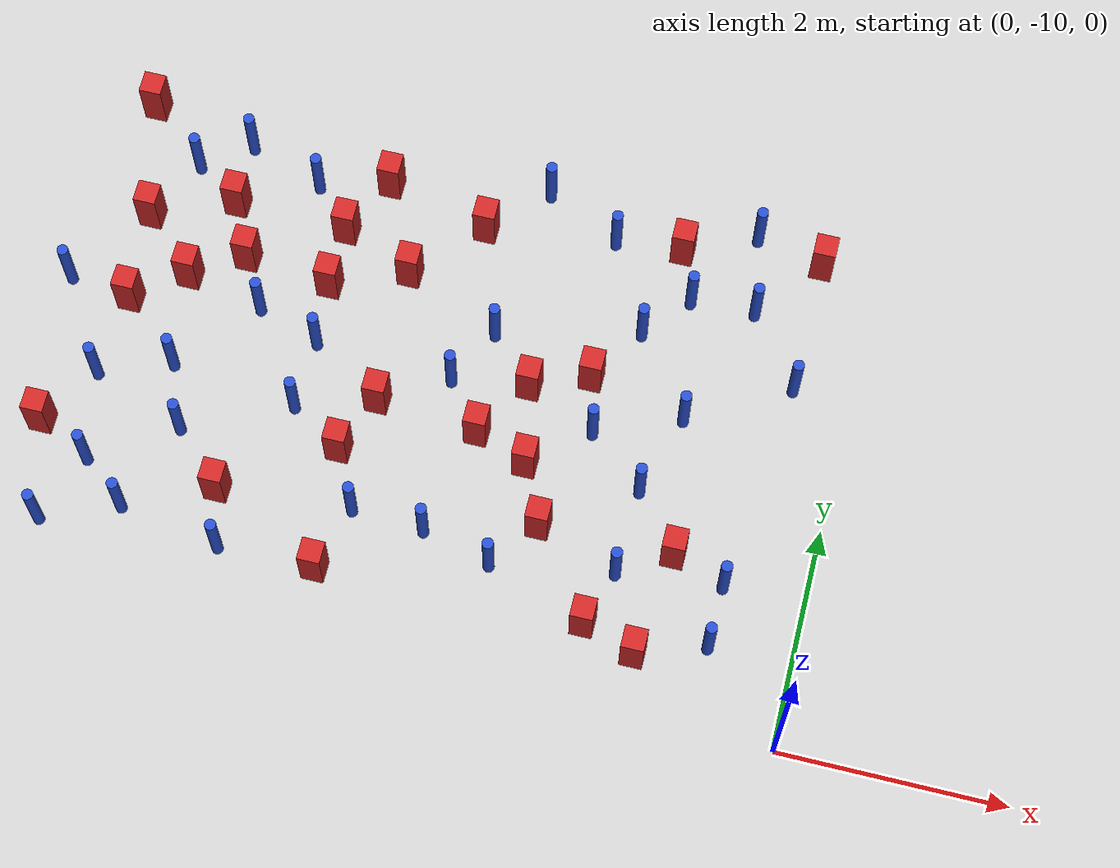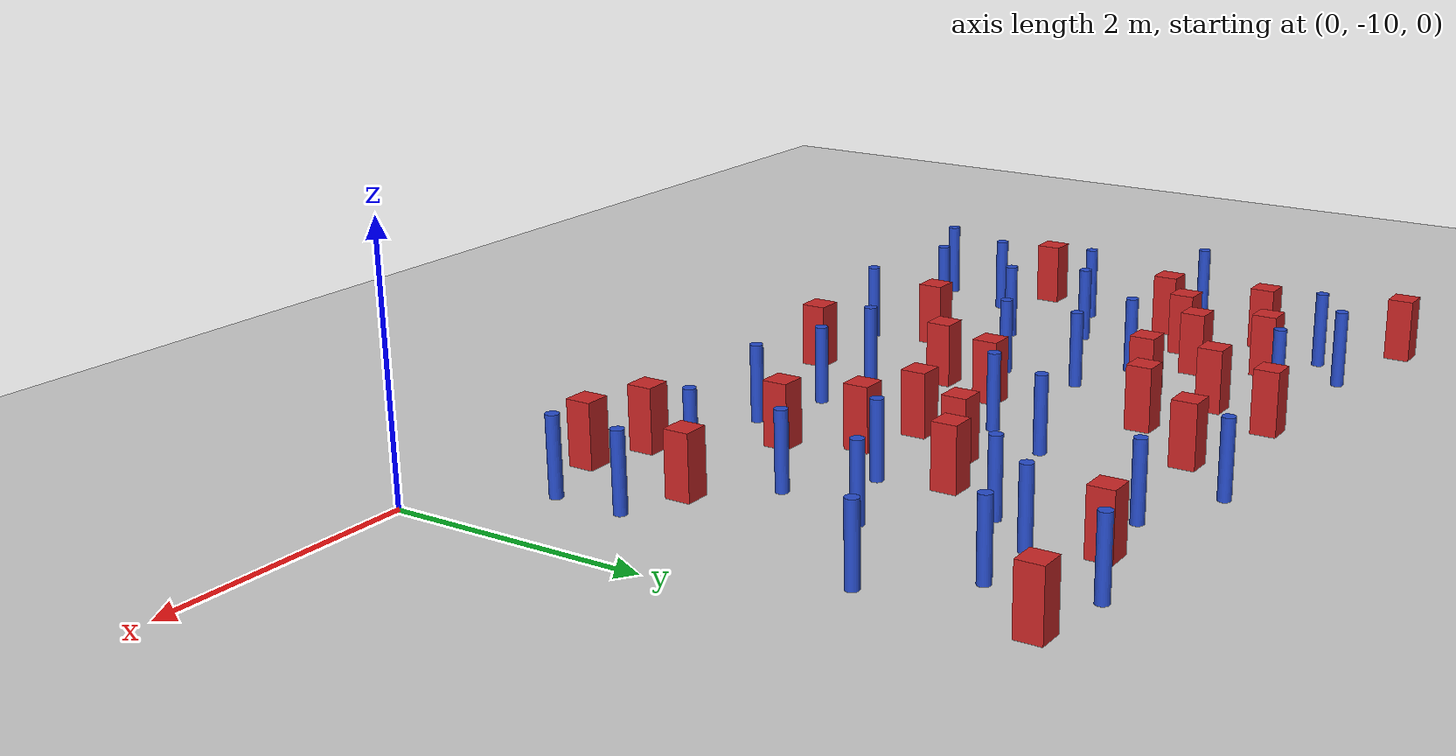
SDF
<sdf version="1.6">
 <world name="default">
  <model name="ground_plane">
   <static>1</static>
   <link name="link">
    <collision name="collision">
     <geometry><plane><normal>0 0 1</normal><size>100 100</size></plane></geometry>
     <surface><friction><ode><mu>100</mu><mu2>50</mu2></ode></friction></surface>
    </collision>
    <visual name="visual">
     <cast_shadows>0</cast_shadows>
     <geometry><plane><normal>0 0 1</normal><size>100 100</size></plane></geometry>
     <material>
      <ambient>1.0 1.0 1.0 1.0</ambient>
      <diffuse>0.8 0.8 0.8 1.0</diffuse>
      <specular>0.01 0.01 0.01 1.000000</specular>
     </material>
    </visual>
   </link>
  </model>
  <model name="square_post_obstacle1">
   <static>true</static>
   <pose>-6.75083043301 -5.38213380311 1.91545236811e-07 -7.35059704564e-06 1.12565212e-07 2.39332434364e-05</pose>
   <link name="link">
    <pose>0 0 0.25 0 -0 0</pose>
    <inertial>
     <mass>100</mass>
     <inertia>
      <ixx>0.166667</ixx>
      <ixy>0</ixy>
      <ixz>0</ixz>
      <iyy>0.166667</iyy>
      <iyz>0</iyz>
      <izz>0.166667</izz>
     </inertia>
    </inertial>
    <collision name="collision"><geometry><box><size>.2 .2 .5</size></box></geometry></collision>
    <visual name="visual">
     <geometry><box><size>.2 .2 .5</size></box></geometry>
     <material>
      <script><name>Gazebo/Red</name><uri>file://media/materials/scripts/gazebo.material</uri></script>
     </material>
    </visual>
   </link>
  </model>
  <model name="pole_obstacle3">
   <static>true</static>
   <pose>-3.02032872302 -5.40585776395 7.38925637345e-09 -8.47170692798e-08 1.24976765033e-08 -1.74513093019e-07</pose>
   <link name="link">
    <pose>0 0 0.3 0 -0 0</pose>
    <inertial>
     <mass>1</mass>
     <inertia><ixx>0.145833</ixx><ixy>0</ixy><ixz>0</ixz><iyy>0.145833</iyy><iyz>0</iyz><izz>0.125</izz></inertia>
    </inertial>
    <collision name="collision">
     <geometry><cylinder><radius>0.05</radius><length>.6</length></cylinder></geometry>
    </collision>
    <visual name="visual">
     <geometry><cylinder><radius>0.05</radius><length>.6</length></cylinder></geometry>
     <material>
      <script><name>Gazebo/Blue</name><uri>file://media/materials/scripts/gazebo.material</uri></script>
     </material>
    </visual>
   </link>
  </model>
  <model name="square_post_obstacle7">
   <static>true</static>
   <pose>-4.23166375392 -8.26234545778 1.91545236811e-07 -7.35059704564e-06 1.12565212e-07 2.39332434364e-05</pose>
   <link name="link">
    <pose>0 0 0.25 0 -0 0</pose>
    <inertial>
     <mass>100</mass>
     <inertia>
      <ixx>0.166667</ixx>
      <ixy>0</ixy>
      <ixz>0</ixz>
      <iyy>0.166667</iyy>
      <iyz>0</iyz>
      <izz>0.166667</izz>
     </inertia>
    </inertial>
    <collision name="collision"><geometry><box><size>.2 .2 .5</size></box></geometry></collision>
    <visual name="visual">
     <geometry><box><size>.2 .2 .5</size></box></geometry>
     <material>
      <script><name>Gazebo/Red</name><uri>file://media/materials/scripts/gazebo.material</uri></script>
     </material>
    </visual>
   </link>
  </model>
  <model name="square_post_obstacle10">
   <static>true</static>
   <pose>-6.82751068562 -8.61218475664 1.91545236811e-07 -7.35059704564e-06 1.12565212e-07 2.39332434364e-05</pose>
   <link name="link">
    <pose>0 0 0.25 0 -0 0</pose>
    <inertial>
     <mass>100</mass>
     <inertia>
      <ixx>0.166667</ixx>
      <ixy>0</ixy>
      <ixz>0</ixz>
      <iyy>0.166667</iyy>
      <iyz>0</iyz>
      <izz>0.166667</izz>
     </inertia>
    </inertial>
    <collision name="collision"><geometry><box><size>.2 .2 .5</size></box></geometry></collision>
    <visual name="visual">
     <geometry><box><size>.2 .2 .5</size></box></geometry>
     <material>
      <script><name>Gazebo/Red</name><uri>file://media/materials/scripts/gazebo.material</uri></script>
     </material>
    </visual>
   </link>
  </model>
  <model name="square_post_obstacle16">
   <static>true</static>
   <pose>-5.514271623 -6.67150716408 1.91545236811e-07 -7.35059704564e-06 1.12565212e-07 2.39332434364e-05</pose>
   <link name="link">
    <pose>0 0 0.25 0 -0 0</pose>
    <inertial>
     <mass>100</mass>
     <inertia>
      <ixx>0.166667</ixx>
      <ixy>0</ixy>
      <ixz>0</ixz>
      <iyy>0.166667</iyy>
      <iyz>0</iyz>
      <izz>0.166667</izz>
     </inertia>
    </inertial>
    <collision name="collision"><geometry><box><size>.2 .2 .5</size></box></geometry></collision>
    <visual name="visual">
     <geometry><box><size>.2 .2 .5</size></box></geometry>
     <material>
      <script><name>Gazebo/Red</name><uri>file://media/materials/scripts/gazebo.material</uri></script>
     </material>
    </visual>
   </link>
  </model>
  <model name="pole_obstacle17">
   <static>true</static>
   <pose>-0.980800262821 -6.12792224462 7.38925637345e-09 -8.47170692799e-08 1.2497676509e-08 -1.74513093015e-07</pose>
   <link name="link">
    <pose>0 0 0.3 0 -0 0</pose>
    <inertial>
     <mass>1</mass>
     <inertia><ixx>0.145833</ixx><ixy>0</ixy><ixz>0</ixz><iyy>0.145833</iyy><iyz>0</iyz><izz>0.125</izz></inertia>
    </inertial>
    <collision name="collision">
     <geometry><cylinder><radius>0.05</radius><length>.6</length></cylinder></geometry>
    </collision>
    <visual name="visual">
     <geometry><cylinder><radius>0.05</radius><length>.6</length></cylinder></geometry>
     <material>
      <script><name>Gazebo/Blue</name><uri>file://media/materials/scripts/gazebo.material</uri></script>
     </material>
    </visual>
   </link>
  </model>
  <model name="square_post_obstacle30">
   <static>true</static>
   <pose>-6.47518173611 -6.4595617239 1.91545236811e-07 -7.35059704564e-06 1.12565212e-07 2.39332434364e-05</pose>
   <link name="link">
    <pose>0 0 0.25 0 -0 0</pose>
    <inertial>
     <mass>100</mass>
     <inertia>
      <ixx>0.166667</ixx>
      <ixy>0</ixy>
      <ixz>0</ixz>
      <iyy>0.166667</iyy>
      <iyz>0</iyz>
      <izz>0.166667</izz>
     </inertia>
    </inertial>
    <collision name="collision"><geometry><box><size>.2 .2 .5</size></box></geometry></collision>
    <visual name="visual">
     <geometry><box><size>.2 .2 .5</size></box></geometry>
     <material>
      <script><name>Gazebo/Red</name><uri>file://media/materials/scripts/gazebo.material</uri></script>
     </material>
    </visual>
   </link>
  </model>
  <model name="square_post_obstacle33">
   <static>true</static>
   <pose>-5.97128283068 -6.96298919986 1.91545236811e-07 -7.35059704564e-06 1.12565212e-07 2.39332434364e-05</pose>
   <link name="link">
    <pose>0 0 0.25 0 -0 0</pose>
    <inertial>
     <mass>100</mass>
     <inertia>
      <ixx>0.166667</ixx>
      <ixy>0</ixy>
      <ixz>0</ixz>
      <iyy>0.166667</iyy>
      <iyz>0</iyz>
      <izz>0.166667</izz>
     </inertia>
    </inertial>
    <collision name="collision"><geometry><box><size>.2 .2 .5</size></box></geometry></collision>
    <visual name="visual">
     <geometry><box><size>.2 .2 .5</size></box></geometry>
     <material>
      <script><name>Gazebo/Red</name><uri>file://media/materials/scripts/gazebo.material</uri></script>
     </material>
    </visual>
   </link>
  </model>
  <model name="pole_obstacle35">
   <static>true</static>
   <pose>-3.32615805638 -8.82250651953 7.38925637345e-09 -8.47170692793e-08 1.24976764408e-08 -1.74513093041e-07</pose>
   <link name="link">
    <pose>0 0 0.3 0 -0 0</pose>
    <inertial>
     <mass>1</mass>
     <inertia><ixx>0.145833</ixx><ixy>0</ixy><ixz>0</ixz><iyy>0.145833</iyy><iyz>0</iyz><izz>0.125</izz></inertia>
    </inertial>
    <collision name="collision">
     <geometry><cylinder><radius>0.05</radius><length>.6</length></cylinder></geometry>
    </collision>
    <visual name="visual">
     <geometry><cylinder><radius>0.05</radius><length>.6</length></cylinder></geometry>
     <material>
      <script><name>Gazebo/Blue</name><uri>file://media/materials/scripts/gazebo.material</uri></script>
     </material>
    </visual>
   </link>
  </model>
  <model name="pole_obstacle47">
   <static>true</static>
   <pose>-1.91391826928 -6.55945251512 7.38925637345e-09 -8.47170692799e-08 1.24976765033e-08 -1.74513093018e-07</pose>
   <link name="link">
    <pose>0 0 0.3 0 -0 0</pose>
    <inertial>
     <mass>1</mass>
     <inertia><ixx>0.145833</ixx><ixy>0</ixy><ixz>0</ixz><iyy>0.145833</iyy><iyz>0</iyz><izz>0.125</izz></inertia>
    </inertial>
    <collision name="collision">
     <geometry><cylinder><radius>0.05</radius><length>.6</length></cylinder></geometry>
    </collision>
    <visual name="visual">
     <geometry><cylinder><radius>0.05</radius><length>.6</length></cylinder></geometry>
     <material>
      <script><name>Gazebo/Blue</name><uri>file://media/materials/scripts/gazebo.material</uri></script>
     </material>
    </visual>
   </link>
  </model>
  <model name="pole_obstacle54">
   <static>true</static>
   <pose>-5.63192512391 -8.40633631766 7.38925637345e-09 -8.471706928e-08 1.24976765081e-08 -1.74513093015e-07</pose>
   <link name="link">
    <pose>0 0 0.3 0 -0 0</pose>
    <inertial>
     <mass>1</mass>
     <inertia><ixx>0.145833</ixx><ixy>0</ixy><ixz>0</ixz><iyy>0.145833</iyy><iyz>0</iyz><izz>0.125</izz></inertia>
    </inertial>
    <collision name="collision">
     <geometry><cylinder><radius>0.05</radius><length>.6</length></cylinder></geometry>
    </collision>
    <visual name="visual">
     <geometry><cylinder><radius>0.05</radius><length>.6</length></cylinder></geometry>
     <material>
      <script><name>Gazebo/Blue</name><uri>file://media/materials/scripts/gazebo.material</uri></script>
     </material>
    </visual>
   </link>
  </model>
  <model name="square_post_obstacle60">
   <static>true</static>
   <pose>-2.76132757575 -7.29452230787 1.91545236811e-07 -7.35059704564e-06 1.12565212e-07 2.39332434364e-05</pose>
   <link name="link">
    <pose>0 0 0.25 0 -0 0</pose>
    <inertial>
     <mass>100</mass>
     <inertia>
      <ixx>0.166667</ixx>
      <ixy>0</ixy>
      <ixz>0</ixz>
      <iyy>0.166667</iyy>
      <iyz>0</iyz>
      <izz>0.166667</izz>
     </inertia>
    </inertial>
    <collision name="collision"><geometry><box><size>.2 .2 .5</size></box></geometry></collision>
    <visual name="visual">
     <geometry><box><size>.2 .2 .5</size></box></geometry>
     <material>
      <script><name>Gazebo/Red</name><uri>file://media/materials/scripts/gazebo.material</uri></script>
     </material>
    </visual>
   </link>
  </model>
  <model name="pole_obstacle60">
   <static>true</static>
   <pose>-5.26761277251 -7.12895908645 7.38925637345e-09 -8.47170692796e-08 1.24976764786e-08 -1.74513093032e-07</pose>
   <link name="link">
    <pose>0 0 0.3 0 -0 0</pose>
    <inertial>
     <mass>1</mass>
     <inertia><ixx>0.145833</ixx><ixy>0</ixy><ixz>0</ixz><iyy>0.145833</iyy><iyz>0</iyz><izz>0.125</izz></inertia>
    </inertial>
    <collision name="collision">
     <geometry><cylinder><radius>0.05</radius><length>.6</length></cylinder></geometry>
    </collision>
    <visual name="visual">
     <geometry><cylinder><radius>0.05</radius><length>.6</length></cylinder></geometry>
     <material>
      <script><name>Gazebo/Blue</name><uri>file://media/materials/scripts/gazebo.material</uri></script>
     </material>
    </visual>
   </link>
  </model>
  <model name="square_post_obstacle62">
   <static>true</static>
   <pose>-5.15702375784 -8.86985379502 1.91545236811e-07 -7.35059704564e-06 1.12565212e-07 2.39332434364e-05</pose>
   <link name="link">
    <pose>0 0 0.25 0 -0 0</pose>
    <inertial>
     <mass>100</mass>
     <inertia>
      <ixx>0.166667</ixx>
      <ixy>0</ixy>
      <ixz>0</ixz>
      <iyy>0.166667</iyy>
      <iyz>0</iyz>
      <izz>0.166667</izz>
     </inertia>
    </inertial>
    <collision name="collision"><geometry><box><size>.2 .2 .5</size></box></geometry></collision>
    <visual name="visual">
     <geometry><box><size>.2 .2 .5</size></box></geometry>
     <material>
      <script><name>Gazebo/Red</name><uri>file://media/materials/scripts/gazebo.material</uri></script>
     </material>
    </visual>
   </link>
  </model>
  <model name="square_post_obstacle64">
   <static>true</static>
   <pose>-4.06120807908 -6.4782205317 1.91545236811e-07 -7.35059704564e-06 1.12565212e-07 2.39332434364e-05</pose>
   <link name="link">
    <pose>0 0 0.25 0 -0 0</pose>
    <inertial>
     <mass>100</mass>
     <inertia>
      <ixx>0.166667</ixx>
      <ixy>0</ixy>
      <ixz>0</ixz>
      <iyy>0.166667</iyy>
      <iyz>0</iyz>
      <izz>0.166667</izz>
     </inertia>
    </inertial>
    <collision name="collision"><geometry><box><size>.2 .2 .5</size></box></geometry></collision>
    <visual name="visual">
     <geometry><box><size>.2 .2 .5</size></box></geometry>
     <material>
      <script><name>Gazebo/Red</name><uri>file://media/materials/scripts/gazebo.material</uri></script>
     </material>
    </visual>
   </link>
  </model>
  <model name="square_post_obstacle70">
   <static>true</static>
   <pose>-2.62102305331 -8.01413683493 1.91545236811e-07 -7.35059704564e-06 1.12565212e-07 2.39332434364e-05</pose>
   <link name="link">
    <pose>0 0 0.25 0 -0 0</pose>
    <inertial>
     <mass>100</mass>
     <inertia>
      <ixx>0.166667</ixx>
      <ixy>0</ixy>
      <ixz>0</ixz>
      <iyy>0.166667</iyy>
      <iyz>0</iyz>
      <izz>0.166667</izz>
     </inertia>
    </inertial>
    <collision name="collision"><geometry><box><size>.2 .2 .5</size></box></geometry></collision>
    <visual name="visual">
     <geometry><box><size>.2 .2 .5</size></box></geometry>
     <material>
      <script><name>Gazebo/Red</name><uri>file://media/materials/scripts/gazebo.material</uri></script>
     </material>
    </visual>
   </link>
  </model>
  <model name="square_post_obstacle72">
   <static>true</static>
   <pose>-2.37419129523 -8.54130291305 1.91545236811e-07 -7.35059704564e-06 1.12565212e-07 2.39332434364e-05</pose>
   <link name="link">
    <pose>0 0 0.25 0 -0 0</pose>
    <inertial>
     <mass>100</mass>
     <inertia>
      <ixx>0.166667</ixx>
      <ixy>0</ixy>
      <ixz>0</ixz>
      <iyy>0.166667</iyy>
      <iyz>0</iyz>
      <izz>0.166667</izz>
     </inertia>
    </inertial>
    <collision name="collision"><geometry><box><size>.2 .2 .5</size></box></geometry></collision>
    <visual name="visual">
     <geometry><box><size>.2 .2 .5</size></box></geometry>
     <material>
      <script><name>Gazebo/Red</name><uri>file://media/materials/scripts/gazebo.material</uri></script>
     </material>
    </visual>
   </link>
  </model>
  <model name="square_post_obstacle73">
   <static>true</static>
   <pose>-1.18697116192 -8.52451711873 1.91545236811e-07 -7.35059704564e-06 1.12565212e-07 2.39332434364e-05</pose>
   <link name="link">
    <pose>0 0 0.25 0 -0 0</pose>
    <inertial>
     <mass>100</mass>
     <inertia>
      <ixx>0.166667</ixx>
      <ixy>0</ixy>
      <ixz>0</ixz>
      <iyy>0.166667</iyy>
      <iyz>0</iyz>
      <izz>0.166667</izz>
     </inertia>
    </inertial>
    <collision name="collision"><geometry><box><size>.2 .2 .5</size></box></geometry></collision>
    <visual name="visual">
     <geometry><box><size>.2 .2 .5</size></box></geometry>
     <material>
      <script><name>Gazebo/Red</name><uri>file://media/materials/scripts/gazebo.material</uri></script>
     </material>
    </visual>
   </link>
  </model>
  <model name="pole_obstacle79">
   <static>true</static>
   <pose>-0.722931123587 -9.26352763257 7.38925637345e-09 -8.47170692797e-08 1.249767648e-08 -1.74513093032e-07</pose>
   <link name="link">
    <pose>0 0 0.3 0 -0 0</pose>
    <inertial>
     <mass>1</mass>
     <inertia><ixx>0.145833</ixx><ixy>0</ixy><ixz>0</ixz><iyy>0.145833</iyy><iyz>0</iyz><izz>0.125</izz></inertia>
    </inertial>
    <collision name="collision">
     <geometry><cylinder><radius>0.05</radius><length>.6</length></cylinder></geometry>
    </collision>
    <visual name="visual">
     <geometry><cylinder><radius>0.05</radius><length>.6</length></cylinder></geometry>
     <material>
      <script><name>Gazebo/Blue</name><uri>file://media/materials/scripts/gazebo.material</uri></script>
     </material>
    </visual>
   </link>
  </model>
  <model name="square_post_obstacle80">
   <static>true</static>
   <pose>-1.73615022087 -5.67802808313 1.91545236811e-07 -7.35059704564e-06 1.12565212e-07 2.39332434364e-05</pose>
   <link name="link">
    <pose>0 0 0.25 0 -0 0</pose>
    <inertial>
     <mass>100</mass>
     <inertia>
      <ixx>0.166667</ixx>
      <ixy>0</ixy>
      <ixz>0</ixz>
      <iyy>0.166667</iyy>
      <iyz>0</iyz>
      <izz>0.166667</izz>
     </inertia>
    </inertial>
    <collision name="collision"><geometry><box><size>.2 .2 .5</size></box></geometry></collision>
    <visual name="visual">
     <geometry><box><size>.2 .2 .5</size></box></geometry>
     <material>
      <script><name>Gazebo/Red</name><uri>file://media/materials/scripts/gazebo.material</uri></script>
     </material>
    </visual>
   </link>
  </model>
  <model name="pole_obstacle86">
   <static>true</static>
   <pose>-1.60072843934 -8.02280211964 7.38925637345e-09 -8.47170692794e-08 1.24976764551e-08 -1.74513093044e-07</pose>
   <link name="link">
    <pose>0 0 0.3 0 -0 0</pose>
    <inertial>
     <mass>1</mass>
     <inertia><ixx>0.145833</ixx><ixy>0</ixy><ixz>0</ixz><iyy>0.145833</iyy><iyz>0</iyz><izz>0.125</izz></inertia>
    </inertial>
    <collision name="collision">
     <geometry><cylinder><radius>0.05</radius><length>.6</length></cylinder></geometry>
    </collision>
    <visual name="visual">
     <geometry><cylinder><radius>0.05</radius><length>.6</length></cylinder></geometry>
     <material>
      <script><name>Gazebo/Blue</name><uri>file://media/materials/scripts/gazebo.material</uri></script>
     </material>
    </visual>
   </link>
  </model>
  <model name="pole_obstacle92">
   <static>true</static>
   <pose>-5.08486751232 -5.82297870842 7.38925637345e-09 -8.47170692796e-08 1.24976764786e-08 -1.74513093032e-07</pose>
   <link name="link">
    <pose>0 0 0.3 0 -0 0</pose>
    <inertial>
     <mass>1</mass>
     <inertia><ixx>0.145833</ixx><ixy>0</ixy><ixz>0</ixz><iyy>0.145833</iyy><iyz>0</iyz><izz>0.125</izz></inertia>
    </inertial>
    <collision name="collision">
     <geometry><cylinder><radius>0.05</radius><length>.6</length></cylinder></geometry>
    </collision>
    <visual name="visual">
     <geometry><cylinder><radius>0.05</radius><length>.6</length></cylinder></geometry>
     <material>
      <script><name>Gazebo/Blue</name><uri>file://media/materials/scripts/gazebo.material</uri></script>
     </material>
    </visual>
   </link>
  </model>
  <model name="pole_obstacle93">
   <static>true</static>
   <pose>-5.77530848235 -5.57805439123 7.38925637345e-09 -8.47170692796e-08 1.24976764786e-08 -1.74513093032e-07</pose>
   <link name="link">
    <pose>0 0 0.3 0 -0 0</pose>
    <inertial>
     <mass>1</mass>
     <inertia><ixx>0.145833</ixx><ixy>0</ixy><ixz>0</ixz><iyy>0.145833</iyy><iyz>0</iyz><izz>0.125</izz></inertia>
    </inertial>
    <collision name="collision">
     <geometry><cylinder><radius>0.05</radius><length>.6</length></cylinder></geometry>
    </collision>
    <visual name="visual">
     <geometry><cylinder><radius>0.05</radius><length>.6</length></cylinder></geometry>
     <material>
      <script><name>Gazebo/Blue</name><uri>file://media/materials/scripts/gazebo.material</uri></script>
     </material>
    </visual>
   </link>
  </model>
  <model name="pole_obstacle97">
   <static>true</static>
   <pose>-1.37737093429 -7.27990019194 7.38925637345e-09 -8.47170692799e-08 1.24976765033e-08 -1.74513093018e-07</pose>
   <link name="link">
    <pose>0 0 0.3 0 -0 0</pose>
    <inertial>
     <mass>1</mass>
     <inertia><ixx>0.145833</ixx><ixy>0</ixy><ixz>0</ixz><iyy>0.145833</iyy><iyz>0</iyz><izz>0.125</izz></inertia>
    </inertial>
    <collision name="collision">
     <geometry><cylinder><radius>0.05</radius><length>.6</length></cylinder></geometry>
    </collision>
    <visual name="visual">
     <geometry><cylinder><radius>0.05</radius><length>.6</length></cylinder></geometry>
     <material>
      <script><name>Gazebo/Blue</name><uri>file://media/materials/scripts/gazebo.material</uri></script>
     </material>
    </visual>
   </link>
  </model>
  <model name="square_post_obstacle90">
   <static>true</static>
   <pose>-6.42090186394 -7.30366981016 1.91545236811e-07 -7.35059704564e-06 1.12565212e-07 2.39332434364e-05</pose>
   <link name="link">
    <pose>0 0 0.25 0 -0 0</pose>
    <inertial>
     <mass>100</mass>
     <inertia>
      <ixx>0.166667</ixx>
      <ixy>0</ixy>
      <ixz>0</ixz>
      <iyy>0.166667</iyy>
      <iyz>0</iyz>
      <izz>0.166667</izz>
     </inertia>
    </inertial>
    <collision name="collision"><geometry><box><size>.2 .2 .5</size></box></geometry></collision>
    <visual name="visual">
     <geometry><box><size>.2 .2 .5</size></box></geometry>
     <material>
      <script><name>Gazebo/Red</name><uri>file://media/materials/scripts/gazebo.material</uri></script>
     </material>
    </visual>
   </link>
  </model>
  <model name="square_post_obstacle91">
   <static>true</static>
   <pose>-3.50632326663 -5.88462040875 1.91545236811e-07 -7.35059704564e-06 1.12565212e-07 2.39332434364e-05</pose>
   <link name="link">
    <pose>0 0 0.25 0 -0 0</pose>
    <inertial>
     <mass>100</mass>
     <inertia>
      <ixx>0.166667</ixx>
      <ixy>0</ixy>
      <ixz>0</ixz>
      <iyy>0.166667</iyy>
      <iyz>0</iyz>
      <izz>0.166667</izz>
     </inertia>
    </inertial>
    <collision name="collision"><geometry><box><size>.2 .2 .5</size></box></geometry></collision>
    <visual name="visual">
     <geometry><box><size>.2 .2 .5</size></box></geometry>
     <material>
      <script><name>Gazebo/Red</name><uri>file://media/materials/scripts/gazebo.material</uri></script>
     </material>
    </visual>
   </link>
  </model>
  <model name="square_post_obstacle93">
   <static>true</static>
   <pose>-4.02372336092 -7.7362326102 1.91545236811e-07 -7.35059704564e-06 1.12565212e-07 2.39332434364e-05</pose>
   <link name="link">
    <pose>0 0 0.25 0 -0 0</pose>
    <inertial>
     <mass>100</mass>
     <inertia>
      <ixx>0.166667</ixx>
      <ixy>0</ixy>
      <ixz>0</ixz>
      <iyy>0.166667</iyy>
      <iyz>0</iyz>
      <izz>0.166667</izz>
     </inertia>
    </inertial>
    <collision name="collision"><geometry><box><size>.2 .2 .5</size></box></geometry></collision>
    <visual name="visual">
     <geometry><box><size>.2 .2 .5</size></box></geometry>
     <material>
      <script><name>Gazebo/Red</name><uri>file://media/materials/scripts/gazebo.material</uri></script>
     </material>
    </visual>
   </link>
  </model>
  <model name="pole_obstacle111">
   <static>true</static>
   <pose>-5.86332567495 -7.82943285249 7.38925637345e-09 -8.47170692796e-08 1.24976764786e-08 -1.74513093032e-07</pose>
   <link name="link">
    <pose>0 0 0.3 0 -0 0</pose>
    <inertial>
     <mass>1</mass>
     <inertia><ixx>0.145833</ixx><ixy>0</ixy><ixz>0</ixz><iyy>0.145833</iyy><iyz>0</iyz><izz>0.125</izz></inertia>
    </inertial>
    <collision name="collision">
     <geometry><cylinder><radius>0.05</radius><length>.6</length></cylinder></geometry>
    </collision>
    <visual name="visual">
     <geometry><cylinder><radius>0.05</radius><length>.6</length></cylinder></geometry>
     <material>
      <script><name>Gazebo/Blue</name><uri>file://media/materials/scripts/gazebo.material</uri></script>
     </material>
    </visual>
   </link>
  </model>
  <model name="pole_obstacle112">
   <static>true</static>
   <pose>-0.500053963779 -6.76802717225 7.38925637345e-09 -8.471706928e-08 1.24976765117e-08 -1.74513093013e-07</pose>
   <link name="link">
    <pose>0 0 0.3 0 -0 0</pose>
    <inertial>
     <mass>1</mass>
     <inertia><ixx>0.145833</ixx><ixy>0</ixy><ixz>0</ixz><iyy>0.145833</iyy><iyz>0</iyz><izz>0.125</izz></inertia>
    </inertial>
    <collision name="collision">
     <geometry><cylinder><radius>0.05</radius><length>.6</length></cylinder></geometry>
    </collision>
    <visual name="visual">
     <geometry><cylinder><radius>0.05</radius><length>.6</length></cylinder></geometry>
     <material>
      <script><name>Gazebo/Blue</name><uri>file://media/materials/scripts/gazebo.material</uri></script>
     </material>
    </visual>
   </link>
  </model>
  <model name="square_post_obstacle106">
   <static>true</static>
   <pose>-1.32579034598 -9.47151738332 1.91545236811e-07 -7.35059704564e-06 1.12565212e-07 2.39332434364e-05</pose>
   <link name="link">
    <pose>0 0 0.25 0 -0 0</pose>
    <inertial>
     <mass>100</mass>
     <inertia>
      <ixx>0.166667</ixx>
      <ixy>0</ixy>
      <ixz>0</ixz>
      <iyy>0.166667</iyy>
      <iyz>0</iyz>
      <izz>0.166667</izz>
     </inertia>
    </inertial>
    <collision name="collision"><geometry><box><size>.2 .2 .5</size></box></geometry></collision>
    <visual name="visual">
     <geometry><box><size>.2 .2 .5</size></box></geometry>
     <material>
      <script><name>Gazebo/Red</name><uri>file://media/materials/scripts/gazebo.material</uri></script>
     </material>
    </visual>
   </link>
  </model>
  <model name="square_post_obstacle107">
   <static>true</static>
   <pose>-3.10031093679 -7.82414076288 1.91545236811e-07 -7.35059704564e-06 1.12565212e-07 2.39332434364e-05</pose>
   <link name="link">
    <pose>0 0 0.25 0 -0 0</pose>
    <inertial>
     <mass>100</mass>
     <inertia>
      <ixx>0.166667</ixx>
      <ixy>0</ixy>
      <ixz>0</ixz>
      <iyy>0.166667</iyy>
      <iyz>0</iyz>
      <izz>0.166667</izz>
     </inertia>
    </inertial>
    <collision name="collision"><geometry><box><size>.2 .2 .5</size></box></geometry></collision>
    <visual name="visual">
     <geometry><box><size>.2 .2 .5</size></box></geometry>
     <material>
      <script><name>Gazebo/Red</name><uri>file://media/materials/scripts/gazebo.material</uri></script>
     </material>
    </visual>
   </link>
  </model>
  <model name="pole_obstacle120">
   <static>true</static>
   <pose>-2.70231885241 -8.98928799007 7.38925637345e-09 -8.47170692793e-08 1.24976764408e-08 -1.74513093041e-07</pose>
   <link name="link">
    <pose>0 0 0.3 0 -0 0</pose>
    <inertial>
     <mass>1</mass>
     <inertia><ixx>0.145833</ixx><ixy>0</ixy><ixz>0</ixz><iyy>0.145833</iyy><iyz>0</iyz><izz>0.125</izz></inertia>
    </inertial>
    <collision name="collision">
     <geometry><cylinder><radius>0.05</radius><length>.6</length></cylinder></geometry>
    </collision>
    <visual name="visual">
     <geometry><cylinder><radius>0.05</radius><length>.6</length></cylinder></geometry>
     <material>
      <script><name>Gazebo/Blue</name><uri>file://media/materials/scripts/gazebo.material</uri></script>
     </material>
    </visual>
   </link>
  </model>
  <model name="pole_obstacle127">
   <static>true</static>
   <pose>-5.92015666446 -9.22494474508 7.38925637345e-09 -8.471706928e-08 1.24976765081e-08 -1.74513093015e-07</pose>
   <link name="link">
    <pose>0 0 0.3 0 -0 0</pose>
    <inertial>
     <mass>1</mass>
     <inertia><ixx>0.145833</ixx><ixy>0</ixy><ixz>0</ixz><iyy>0.145833</iyy><iyz>0</iyz><izz>0.125</izz></inertia>
    </inertial>
    <collision name="collision">
     <geometry><cylinder><radius>0.05</radius><length>.6</length></cylinder></geometry>
    </collision>
    <visual name="visual">
     <geometry><cylinder><radius>0.05</radius><length>.6</length></cylinder></geometry>
     <material>
      <script><name>Gazebo/Blue</name><uri>file://media/materials/scripts/gazebo.material</uri></script>
     </material>
    </visual>
   </link>
  </model>
  <model name="pole_obstacle131">
   <static>true</static>
   <pose>-5.00623266102 -9.38592915157 7.38925637345e-09 -8.471706928e-08 1.24976765081e-08 -1.74513093015e-07</pose>
   <link name="link">
    <pose>0 0 0.3 0 -0 0</pose>
    <inertial>
     <mass>1</mass>
     <inertia><ixx>0.145833</ixx><ixy>0</ixy><ixz>0</ixz><iyy>0.145833</iyy><iyz>0</iyz><izz>0.125</izz></inertia>
    </inertial>
    <collision name="collision">
     <geometry><cylinder><radius>0.05</radius><length>.6</length></cylinder></geometry>
    </collision>
    <visual name="visual">
     <geometry><cylinder><radius>0.05</radius><length>.6</length></cylinder></geometry>
     <material>
      <script><name>Gazebo/Blue</name><uri>file://media/materials/scripts/gazebo.material</uri></script>
     </material>
    </visual>
   </link>
  </model>
  <model name="square_post_obstacle116">
   <static>true</static>
   <pose>-4.45027088672 -5.64829047705 1.91545236811e-07 -7.35059704564e-06 1.12565212e-07 2.39332434364e-05</pose>
   <link name="link">
    <pose>0 0 0.25 0 -0 0</pose>
    <inertial>
     <mass>100</mass>
     <inertia>
      <ixx>0.166667</ixx>
      <ixy>0</ixy>
      <ixz>0</ixz>
      <iyy>0.166667</iyy>
      <iyz>0</iyz>
      <izz>0.166667</izz>
     </inertia>
    </inertial>
    <collision name="collision"><geometry><box><size>.2 .2 .5</size></box></geometry></collision>
    <visual name="visual">
     <geometry><box><size>.2 .2 .5</size></box></geometry>
     <material>
      <script><name>Gazebo/Red</name><uri>file://media/materials/scripts/gazebo.material</uri></script>
     </material>
    </visual>
   </link>
  </model>
  <model name="square_post_obstacle124">
   <static>true</static>
   <pose>-1.79859320255 -9.30826986361 1.91545236811e-07 -7.35059704564e-06 1.12565212e-07 2.39332434364e-05</pose>
   <link name="link">
    <pose>0 0 0.25 0 -0 0</pose>
    <inertial>
     <mass>100</mass>
     <inertia>
      <ixx>0.166667</ixx>
      <ixy>0</ixy>
      <ixz>0</ixz>
      <iyy>0.166667</iyy>
      <iyz>0</iyz>
      <izz>0.166667</izz>
     </inertia>
    </inertial>
    <collision name="collision"><geometry><box><size>.2 .2 .5</size></box></geometry></collision>
    <visual name="visual">
     <geometry><box><size>.2 .2 .5</size></box></geometry>
     <material>
      <script><name>Gazebo/Red</name><uri>file://media/materials/scripts/gazebo.material</uri></script>
     </material>
    </visual>
   </link>
  </model>
  <model name="square_post_obstacle133">
   <static>true</static>
   <pose>-4.14200492754 -9.37091914433 1.91545236811e-07 -7.35059704564e-06 1.12565212e-07 2.39332434364e-05</pose>
   <link name="link">
    <pose>0 0 0.25 0 -0 0</pose>
    <inertial>
     <mass>100</mass>
     <inertia>
      <ixx>0.166667</ixx>
      <ixy>0</ixy>
      <ixz>0</ixz>
      <iyy>0.166667</iyy>
      <iyz>0</iyz>
      <izz>0.166667</izz>
     </inertia>
    </inertial>
    <collision name="collision"><geometry><box><size>.2 .2 .5</size></box></geometry></collision>
    <visual name="visual">
     <geometry><box><size>.2 .2 .5</size></box></geometry>
     <material>
      <script><name>Gazebo/Red</name><uri>file://media/materials/scripts/gazebo.material</uri></script>
     </material>
    </visual>
   </link>
  </model>
  <model name="pole_obstacle144">
   <static>true</static>
   <pose>-1.63384930425 -8.80727012564 7.38925637345e-09 -8.47170692798e-08 1.24976764881e-08 -1.74513093027e-07</pose>
   <link name="link">
    <pose>0 0 0.3 0 -0 0</pose>
    <inertial>
     <mass>1</mass>
     <inertia><ixx>0.145833</ixx><ixy>0</ixy><ixz>0</ixz><iyy>0.145833</iyy><iyz>0</iyz><izz>0.125</izz></inertia>
    </inertial>
    <collision name="collision">
     <geometry><cylinder><radius>0.05</radius><length>.6</length></cylinder></geometry>
    </collision>
    <visual name="visual">
     <geometry><cylinder><radius>0.05</radius><length>.6</length></cylinder></geometry>
     <material>
      <script><name>Gazebo/Blue</name><uri>file://media/materials/scripts/gazebo.material</uri></script>
     </material>
    </visual>
   </link>
  </model>
  <model name="square_post_obstacle135">
   <static>true</static>
   <pose>-0.493074202373 -5.52868769938 1.91545236811e-07 -7.35059704564e-06 1.12565212e-07 2.39332434364e-05</pose>
   <link name="link">
    <pose>0 0 0.25 0 -0 0</pose>
    <inertial>
     <mass>100</mass>
     <inertia>
      <ixx>0.166667</ixx>
      <ixy>0</ixy>
      <ixz>0</ixz>
      <iyy>0.166667</iyy>
      <iyz>0</iyz>
      <izz>0.166667</izz>
     </inertia>
    </inertial>
    <collision name="collision"><geometry><box><size>.2 .2 .5</size></box></geometry></collision>
    <visual name="visual">
     <geometry><box><size>.2 .2 .5</size></box></geometry>
     <material>
      <script><name>Gazebo/Red</name><uri>file://media/materials/scripts/gazebo.material</uri></script>
     </material>
    </visual>
   </link>
  </model>
  <model name="pole_obstacle146">
   <static>true</static>
   <pose>-4.71695453397 -7.96846350765 7.38925637345e-09 -8.47170692796e-08 1.24976764752e-08 -1.74513093035e-07</pose>
   <link name="link">
    <pose>0 0 0.3 0 -0 0</pose>
    <inertial>
     <mass>1</mass>
     <inertia><ixx>0.145833</ixx><ixy>0</ixy><ixz>0</ixz><iyy>0.145833</iyy><iyz>0</iyz><izz>0.125</izz></inertia>
    </inertial>
    <collision name="collision">
     <geometry><cylinder><radius>0.05</radius><length>.6</length></cylinder></geometry>
    </collision>
    <visual name="visual">
     <geometry><cylinder><radius>0.05</radius><length>.6</length></cylinder></geometry>
     <material>
      <script><name>Gazebo/Blue</name><uri>file://media/materials/scripts/gazebo.material</uri></script>
     </material>
    </visual>
   </link>
  </model>
  <model name="pole_obstacle153">
   <static>true</static>
   <pose>-6.19512201733 -5.88331331157 7.38925637345e-09 -8.47170692796e-08 1.24976764786e-08 -1.74513093032e-07</pose>
   <link name="link">
    <pose>0 0 0.3 0 -0 0</pose>
    <inertial>
     <mass>1</mass>
     <inertia><ixx>0.145833</ixx><ixy>0</ixy><ixz>0</ixz><iyy>0.145833</iyy><iyz>0</iyz><izz>0.125</izz></inertia>
    </inertial>
    <collision name="collision">
     <geometry><cylinder><radius>0.05</radius><length>.6</length></cylinder></geometry>
    </collision>
    <visual name="visual">
     <geometry><cylinder><radius>0.05</radius><length>.6</length></cylinder></geometry>
     <material>
      <script><name>Gazebo/Blue</name><uri>file://media/materials/scripts/gazebo.material</uri></script>
     </material>
    </visual>
   </link>
  </model>
  <model name="square_post_obstacle142">
   <static>true</static>
   <pose>-5.75686338014 -6.16663377747 1.91545236811e-07 -7.35059704564e-06 1.12565212e-07 2.39332434364e-05</pose>
   <link name="link">
    <pose>0 0 0.25 0 -0 0</pose>
    <inertial>
     <mass>100</mass>
     <inertia>
      <ixx>0.166667</ixx>
      <ixy>0</ixy>
      <ixz>0</ixz>
      <iyy>0.166667</iyy>
      <iyz>0</iyz>
      <izz>0.166667</izz>
     </inertia>
    </inertial>
    <collision name="collision"><geometry><box><size>.2 .2 .5</size></box></geometry></collision>
    <visual name="visual">
     <geometry><box><size>.2 .2 .5</size></box></geometry>
     <material>
      <script><name>Gazebo/Red</name><uri>file://media/materials/scripts/gazebo.material</uri></script>
     </material>
    </visual>
   </link>
  </model>
  <model name="pole_obstacle154">
   <static>true</static>
   <pose>-6.99779385878 -7.2295112623 7.38925637345e-09 -8.47170692796e-08 1.24976764786e-08 -1.74513093032e-07</pose>
   <link name="link">
    <pose>0 0 0.3 0 -0 0</pose>
    <inertial>
     <mass>1</mass>
     <inertia><ixx>0.145833</ixx><ixy>0</ixy><ixz>0</ixz><iyy>0.145833</iyy><iyz>0</iyz><izz>0.125</izz></inertia>
    </inertial>
    <collision name="collision">
     <geometry><cylinder><radius>0.05</radius><length>.6</length></cylinder></geometry>
    </collision>
    <visual name="visual">
     <geometry><cylinder><radius>0.05</radius><length>.6</length></cylinder></geometry>
     <material>
      <script><name>Gazebo/Blue</name><uri>file://media/materials/scripts/gazebo.material</uri></script>
     </material>
    </visual>
   </link>
  </model>
  <model name="pole_obstacle174">
   <static>true</static>
   <pose>-2.1211654096 -7.58769957629 7.38925637345e-09 -8.47170692798e-08 1.24976765033e-08 -1.74513093019e-07</pose>
   <link name="link">
    <pose>0 0 0.3 0 -0 0</pose>
    <inertial>
     <mass>1</mass>
     <inertia><ixx>0.145833</ixx><ixy>0</ixy><ixz>0</ixz><iyy>0.145833</iyy><iyz>0</iyz><izz>0.125</izz></inertia>
    </inertial>
    <collision name="collision">
     <geometry><cylinder><radius>0.05</radius><length>.6</length></cylinder></geometry>
    </collision>
    <visual name="visual">
     <geometry><cylinder><radius>0.05</radius><length>.6</length></cylinder></geometry>
     <material>
      <script><name>Gazebo/Blue</name><uri>file://media/materials/scripts/gazebo.material</uri></script>
     </material>
    </visual>
   </link>
  </model>
  <model name="square_post_obstacle169">
   <static>true</static>
   <pose>-2.24878448247 -7.08137213943 1.91545236811e-07 -7.35059704564e-06 1.12565212e-07 2.39332434364e-05</pose>
   <link name="link">
    <pose>0 0 0.25 0 -0 0</pose>
    <inertial>
     <mass>100</mass>
     <inertia>
      <ixx>0.166667</ixx>
      <ixy>0</ixy>
      <ixz>0</ixz>
      <iyy>0.166667</iyy>
      <iyz>0</iyz>
      <izz>0.166667</izz>
     </inertia>
    </inertial>
    <collision name="collision"><geometry><box><size>.2 .2 .5</size></box></geometry></collision>
    <visual name="visual">
     <geometry><box><size>.2 .2 .5</size></box></geometry>
     <material>
      <script><name>Gazebo/Red</name><uri>file://media/materials/scripts/gazebo.material</uri></script>
     </material>
    </visual>
   </link>
  </model>
  <model name="pole_obstacle187">
   <static>true</static>
   <pose>-3.17740661506 -6.87310857734 7.38925637345e-09 -8.47170692798e-08 1.24976765033e-08 -1.74513093019e-07</pose>
   <link name="link">
    <pose>0 0 0.3 0 -0 0</pose>
    <inertial>
     <mass>1</mass>
     <inertia><ixx>0.145833</ixx><ixy>0</ixy><ixz>0</ixz><iyy>0.145833</iyy><iyz>0</iyz><izz>0.125</izz></inertia>
    </inertial>
    <collision name="collision">
     <geometry><cylinder><radius>0.05</radius><length>.6</length></cylinder></geometry>
    </collision>
    <visual name="visual">
     <geometry><cylinder><radius>0.05</radius><length>.6</length></cylinder></geometry>
     <material>
      <script><name>Gazebo/Blue</name><uri>file://media/materials/scripts/gazebo.material</uri></script>
     </material>
    </visual>
   </link>
  </model>
  <model name="square_post_obstacle180">
   <static>true</static>
   <pose>-4.73004273561 -6.7556858665 1.91545236811e-07 -7.35059704564e-06 1.12565212e-07 2.39332434364e-05</pose>
   <link name="link">
    <pose>0 0 0.25 0 -0 0</pose>
    <inertial>
     <mass>100</mass>
     <inertia>
      <ixx>0.166667</ixx>
      <ixy>0</ixy>
      <ixz>0</ixz>
      <iyy>0.166667</iyy>
      <iyz>0</iyz>
      <izz>0.166667</izz>
     </inertia>
    </inertial>
    <collision name="collision"><geometry><box><size>.2 .2 .5</size></box></geometry></collision>
    <visual name="visual">
     <geometry><box><size>.2 .2 .5</size></box></geometry>
     <material>
      <script><name>Gazebo/Red</name><uri>file://media/materials/scripts/gazebo.material</uri></script>
     </material>
    </visual>
   </link>
  </model>
  <model name="pole_obstacle189">
   <static>true</static>
   <pose>-2.34055919086 -5.73351326114 7.38925637345e-09 -8.47170692798e-08 1.24976765033e-08 -1.74513093019e-07</pose>
   <link name="link">
    <pose>0 0 0.3 0 -0 0</pose>
    <inertial>
     <mass>1</mass>
     <inertia><ixx>0.145833</ixx><ixy>0</ixy><ixz>0</ixz><iyy>0.145833</iyy><iyz>0</iyz><izz>0.125</izz></inertia>
    </inertial>
    <collision name="collision">
     <geometry><cylinder><radius>0.05</radius><length>.6</length></cylinder></geometry>
    </collision>
    <visual name="visual">
     <geometry><cylinder><radius>0.05</radius><length>.6</length></cylinder></geometry>
     <material>
      <script><name>Gazebo/Blue</name><uri>file://media/materials/scripts/gazebo.material</uri></script>
     </material>
    </visual>
   </link>
  </model>
  <model name="pole_obstacle197">
   <static>true</static>
   <pose>-0.713784795996 -8.70705738929 7.38925637345e-09 -8.47170692797e-08 1.249767648e-08 -1.74513093032e-07</pose>
   <link name="link">
    <pose>0 0 0.3 0 -0 0</pose>
    <inertial>
     <mass>1</mass>
     <inertia><ixx>0.145833</ixx><ixy>0</ixy><ixz>0</ixz><iyy>0.145833</iyy><iyz>0</iyz><izz>0.125</izz></inertia>
    </inertial>
    <collision name="collision">
     <geometry><cylinder><radius>0.05</radius><length>.6</length></cylinder></geometry>
    </collision>
    <visual name="visual">
     <geometry><cylinder><radius>0.05</radius><length>.6</length></cylinder></geometry>
     <material>
      <script><name>Gazebo/Blue</name><uri>file://media/materials/scripts/gazebo.material</uri></script>
     </material>
    </visual>
   </link>
  </model>
  <model name="pole_obstacle198">
   <static>true</static>
   <pose>-6.33957032853 -8.87202262181 7.38925637345e-09 -8.471706928e-08 1.24976765081e-08 -1.74513093015e-07</pose>
   <link name="link">
    <pose>0 0 0.3 0 -0 0</pose>
    <inertial>
     <mass>1</mass>
     <inertia><ixx>0.145833</ixx><ixy>0</ixy><ixz>0</ixz><iyy>0.145833</iyy><iyz>0</iyz><izz>0.125</izz></inertia>
    </inertial>
    <collision name="collision">
     <geometry><cylinder><radius>0.05</radius><length>.6</length></cylinder></geometry>
    </collision>
    <visual name="visual">
     <geometry><cylinder><radius>0.05</radius><length>.6</length></cylinder></geometry>
     <material>
      <script><name>Gazebo/Blue</name><uri>file://media/materials/scripts/gazebo.material</uri></script>
     </material>
    </visual>
   </link>
  </model>
  <model name="pole_obstacle204">
   <static>true</static>
   <pose>-1.10229433679 -5.39733535714 7.38925637345e-09 -8.47170692799e-08 1.24976765033e-08 -1.74513093018e-07</pose>
   <link name="link">
    <pose>0 0 0.3 0 -0 0</pose>
    <inertial>
     <mass>1</mass>
     <inertia><ixx>0.145833</ixx><ixy>0</ixy><ixz>0</ixz><iyy>0.145833</iyy><iyz>0</iyz><izz>0.125</izz></inertia>
    </inertial>
    <collision name="collision">
     <geometry><cylinder><radius>0.05</radius><length>.6</length></cylinder></geometry>
    </collision>
    <visual name="visual">
     <geometry><cylinder><radius>0.05</radius><length>.6</length></cylinder></geometry>
     <material>
      <script><name>Gazebo/Blue</name><uri>file://media/materials/scripts/gazebo.material</uri></script>
     </material>
    </visual>
   </link>
  </model>
  <model name="pole_obstacle210">
   <static>true</static>
   <pose>-3.4428557127 -7.3948192624 7.38925637345e-09 -8.47170692794e-08 1.24976764468e-08 -1.7451309304e-07</pose>
   <link name="link">
    <pose>0 0 0.3 0 -0 0</pose>
    <inertial>
     <mass>1</mass>
     <inertia><ixx>0.145833</ixx><ixy>0</ixy><ixz>0</ixz><iyy>0.145833</iyy><iyz>0</iyz><izz>0.125</izz></inertia>
    </inertial>
    <collision name="collision">
     <geometry><cylinder><radius>0.05</radius><length>.6</length></cylinder></geometry>
    </collision>
    <visual name="visual">
     <geometry><cylinder><radius>0.05</radius><length>.6</length></cylinder></geometry>
     <material>
      <script><name>Gazebo/Blue</name><uri>file://media/materials/scripts/gazebo.material</uri></script>
     </material>
    </visual>
   </link>
  </model>
  <model name="pole_obstacle211">
   <static>true</static>
   <pose>-3.97243004151 -8.78216470512 7.38925637345e-09 -8.47170692799e-08 1.24976765027e-08 -1.74513093018e-07</pose>
   <link name="link">
    <pose>0 0 0.3 0 -0 0</pose>
    <inertial>
     <mass>1</mass>
     <inertia><ixx>0.145833</ixx><ixy>0</ixy><ixz>0</ixz><iyy>0.145833</iyy><iyz>0</iyz><izz>0.125</izz></inertia>
    </inertial>
    <collision name="collision">
     <geometry><cylinder><radius>0.05</radius><length>.6</length></cylinder></geometry>
    </collision>
    <visual name="visual">
     <geometry><cylinder><radius>0.05</radius><length>.6</length></cylinder></geometry>
     <material>
      <script><name>Gazebo/Blue</name><uri>file://media/materials/scripts/gazebo.material</uri></script>
     </material>
    </visual>
   </link>
  </model>
  <model name="pole_obstacle215">
   <static>true</static>
   <pose>-6.58143387565 -9.49556161869 7.38925637345e-09 -8.471706928e-08 1.24976765081e-08 -1.74513093015e-07</pose>
   <link name="link">
    <pose>0 0 0.3 0 -0 0</pose>
    <inertial>
     <mass>1</mass>
     <inertia><ixx>0.145833</ixx><ixy>0</ixy><ixz>0</ixz><iyy>0.145833</iyy><iyz>0</iyz><izz>0.125</izz></inertia>
    </inertial>
    <collision name="collision">
     <geometry><cylinder><radius>0.05</radius><length>.6</length></cylinder></geometry>
    </collision>
    <visual name="visual">
     <geometry><cylinder><radius>0.05</radius><length>.6</length></cylinder></geometry>
     <material>
      <script><name>Gazebo/Blue</name><uri>file://media/materials/scripts/gazebo.material</uri></script>
     </material>
    </visual>
   </link>
  </model>
  <model name="pole_obstacle220">
   <static>true</static>
   <pose>-1.55973400789 -6.15035982926 7.38925637345e-09 -8.47170692799e-08 1.24976765033e-08 -1.74513093018e-07</pose>
   <link name="link">
    <pose>0 0 0.3 0 -0 0</pose>
    <inertial>
     <mass>1</mass>
     <inertia><ixx>0.145833</ixx><ixy>0</ixy><ixz>0</ixz><iyy>0.145833</iyy><iyz>0</iyz><izz>0.125</izz></inertia>
    </inertial>
    <collision name="collision">
     <geometry><cylinder><radius>0.05</radius><length>.6</length></cylinder></geometry>
    </collision>
    <visual name="visual">
     <geometry><cylinder><radius>0.05</radius><length>.6</length></cylinder></geometry>
     <material>
      <script><name>Gazebo/Blue</name><uri>file://media/materials/scripts/gazebo.material</uri></script>
     </material>
    </visual>
   </link>
  </model>
  <model name="pole_obstacle221">
   <static>true</static>
   <pose>-4.69171980299 -7.33422844251 7.38925637345e-09 -8.47170692796e-08 1.24976764786e-08 -1.74513093032e-07</pose>
   <link name="link">
    <pose>0 0 0.3 0 -0 0</pose>
    <inertial>
     <mass>1</mass>
     <inertia><ixx>0.145833</ixx><ixy>0</ixy><ixz>0</ixz><iyy>0.145833</iyy><iyz>0</iyz><izz>0.125</izz></inertia>
    </inertial>
    <collision name="collision">
     <geometry><cylinder><radius>0.05</radius><length>.6</length></cylinder></geometry>
    </collision>
    <visual name="visual">
     <geometry><cylinder><radius>0.05</radius><length>.6</length></cylinder></geometry>
     <material>
      <script><name>Gazebo/Blue</name><uri>file://media/materials/scripts/gazebo.material</uri></script>
     </material>
    </visual>
   </link>
  </model>
  <model name="square_post_obstacle212">
   <static>true</static>
   <pose>-4.72274932667 -6.19759269147 1.91545236811e-07 -7.35059704564e-06 1.12565212e-07 2.39332434364e-05</pose>
   <link name="link">
    <pose>0 0 0.25 0 -0 0</pose>
    <inertial>
     <mass>100</mass>
     <inertia>
      <ixx>0.166667</ixx>
      <ixy>0</ixy>
      <ixz>0</ixz>
      <iyy>0.166667</iyy>
      <iyz>0</iyz>
      <izz>0.166667</izz>
     </inertia>
    </inertial>
    <collision name="collision"><geometry><box><size>.2 .2 .5</size></box></geometry></collision>
    <visual name="visual">
     <geometry><box><size>.2 .2 .5</size></box></geometry>
     <material>
      <script><name>Gazebo/Red</name><uri>file://media/materials/scripts/gazebo.material</uri></script>
     </material>
    </visual>
   </link>
  </model>
  <model name="pole_obstacle235">
   <static>true</static>
   <pose>-6.49241999043 -8.07011997922 7.38925637345e-09 -8.471706928e-08 1.24976765081e-08 -1.74513093015e-07</pose>
   <link name="link">
    <pose>0 0 0.3 0 -0 0</pose>
    <inertial>
     <mass>1</mass>
     <inertia><ixx>0.145833</ixx><ixy>0</ixy><ixz>0</ixz><iyy>0.145833</iyy><iyz>0</iyz><izz>0.125</izz></inertia>
    </inertial>
    <collision name="collision">
     <geometry><cylinder><radius>0.05</radius><length>.6</length></cylinder></geometry>
    </collision>
    <visual name="visual">
     <geometry><cylinder><radius>0.05</radius><length>.6</length></cylinder></geometry>
     <material>
      <script><name>Gazebo/Blue</name><uri>file://media/materials/scripts/gazebo.material</uri></script>
     </material>
    </visual>
   </link>
  </model>
 </world>
</sdf>
